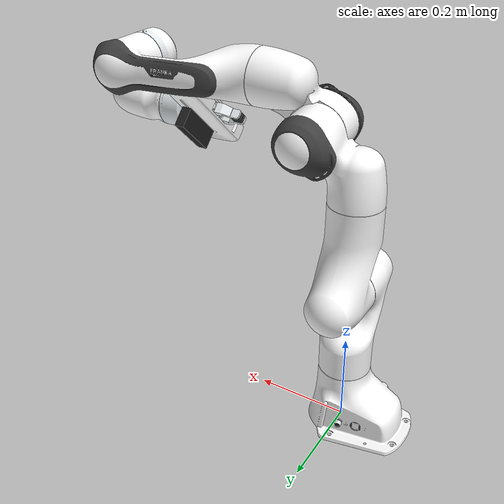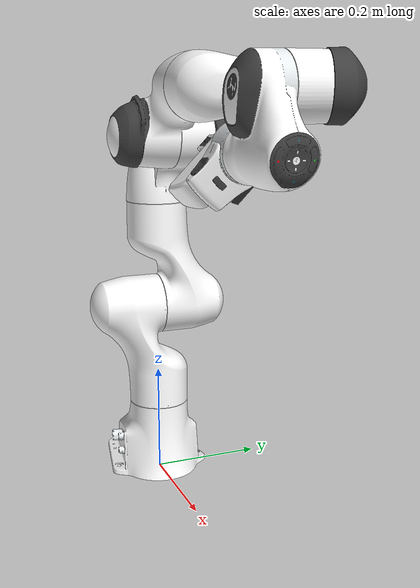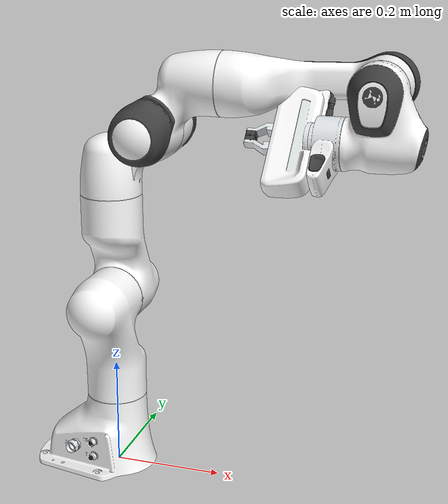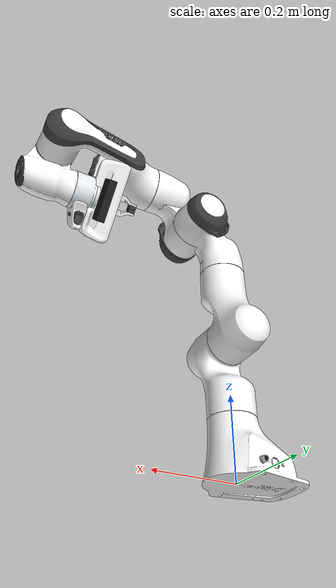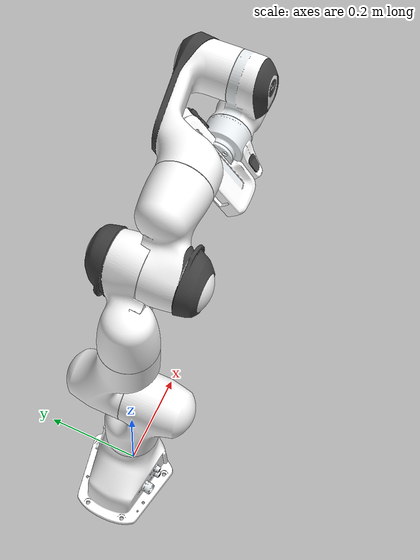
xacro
<?xml version="1.0" ?>
<!-- |    This document was autogenerated by xacro from robots/panda_arm_hand.urdf.xacro | -->
<!-- |    EDITING THIS FILE BY HAND IS NOT RECOMMENDED                                 | -->
<robot name="panda" xmlns:xacro="http://www.ros.org/wiki/xacro">
  <!-- If using a different frame with ${connected_to} param, make sure 'world' frame exists in the TF tree -->
  <xacro:arg name="arm_id" default="panda"/>
  <xacro:property name="M_PI" value="3.1415926535897931" />
  <joint name="panda_hand_joint" type="fixed">
    <parent link="panda_link8"/>
    <child link="panda_hand"/>
    <origin rpy="0 0 -0.7853981633974483" xyz="0 0 0"/>
  </joint>
  <link name="panda_hand">
    <visual>
      <geometry>
        <mesh filename="package://franka_panda_description/meshes/visual/hand.dae"/>
      </geometry>
    </visual>
    <collision>
      <geometry>
        <mesh filename="package://franka_panda_description/meshes/collision/hand.stl"/>
      </geometry>
    </collision>
    <inertial>
      <origin rpy="0 0 0" xyz="0 0.0015244 0.0275912"/>
      <mass value="0.73"/>
      <inertia ixx="0.00278560230025" ixy="0.0" ixz="0.0" iyy="0.000400033405336" iyz="0.0" izz="0.00256378041832"/>
    </inertial>
  </link>
  <link name="panda_leftfinger">
    <visual>
      <geometry>
        <mesh filename="package://franka_panda_description/meshes/visual/finger.dae"/>
      </geometry>
    </visual>
    <collision>
      <geometry>
        <mesh filename="package://franka_panda_description/meshes/collision/finger.stl"/>
      </geometry>
    </collision>
    <inertial>
      <origin rpy="0 0 0" xyz="0 0.0145644 0.0227941"/>
      <mass value="0.1"/>
      <inertia ixx="3.01220925051e-05" ixy="0.0" ixz="0.0" iyy="2.95873808038e-05" iyz="0.0" izz="6.95125211657e-06"/>
    </inertial>
  </link>
  <link name="panda_rightfinger">
    <visual>
      <origin rpy="0 0 3.141592653589793" xyz="0 0 0"/>
      <geometry>
        <mesh filename="package://franka_panda_description/meshes/visual/finger.dae"/>
      </geometry>
    </visual>
    <collision>
      <origin rpy="0 0 3.141592653589793" xyz="0 0 0"/>
      <geometry>
        <mesh filename="package://franka_panda_description/meshes/collision/finger.stl"/>
      </geometry>
    </collision>
    <inertial>
      <origin rpy="0 0 3.141592653589793" xyz="0 -0.0145644 0.0227941"/>
      <mass value="0.1"/>
      <inertia ixx="3.01220925051e-05" ixy="0.0" ixz="0.0" iyy="2.95873808038e-05" iyz="0.0" izz="6.95125211657e-06"/>
    </inertial>
  </link>
  <joint name="panda_finger_joint1" type="prismatic">
    <parent link="panda_hand"/>
    <child link="panda_leftfinger"/>
    <origin rpy="0 0 0" xyz="0 0 0.0584"/>
    <axis xyz="0 1 0"/>
    <limit effort="20" lower="0.0" upper="0.04" velocity="0.2"/>
    <dynamics damping="500.0" friction="0.0"/>
  </joint>
  <joint name="panda_finger_joint2" type="prismatic">
    <parent link="panda_hand"/>
    <child link="panda_rightfinger"/>
    <origin rpy="0 0 0" xyz="0 0 0.0584"/>
    <axis xyz="0 -1 0"/>
    <limit effort="20" lower="0.0" upper="0.04" velocity="0.2"/>
    <dynamics damping="500.0" friction="0.0"/>
    <mimic joint="panda_finger_joint1"/>
  </joint>
  <link name="world"/>
  <joint name="panda_to_world" type="fixed">
    <parent link="world"/>
    <child link="panda_link0"/>
    <origin rpy="0 0 0" xyz="0 0 0"/>
    <dynamics damping="1.0"/>
  </joint>
  <link name="panda_link0">
    <visual>
      <geometry>
        <mesh filename="package://franka_panda_description/meshes/visual/link0.dae"/>
      </geometry>
    </visual>
    <collision>
      <geometry>
        <mesh filename="package://franka_panda_description/meshes/collision/link0.stl"/>
      </geometry>
    </collision>
    <inertial>
      <origin rpy="0 0 0" xyz="0 0 0"/>
      <mass value="3.06"/>
      <inertia ixx="0.3" ixy="0.0" ixz="0.0" iyy="0.3" iyz="0.0" izz="0.3"/>
    </inertial>
  </link>
  <link name="panda_link1">
    <visual>
      <geometry>
        <mesh filename="package://franka_panda_description/meshes/visual/link1.dae"/>
      </geometry>
    </visual>
    <collision>
      <geometry>
        <mesh filename="package://franka_panda_description/meshes/collision/link1.stl"/>
      </geometry>
    </collision>
    <inertial>
      <origin rpy="0 0 0" xyz="3.875e-03 2.081e-03 -0.1750"/>
      <mass value="4.970684"/>
      <inertia ixx="7.0337e-01" ixy="-1.3900e-04" ixz="6.7720e-03" iyy="7.0661e-01" iyz="1.9169e-02" izz="9.1170e-03"/>
    </inertial>
  </link>
  <joint name="panda_joint1" type="revolute">
    <safety_controller k_position="100.0" k_velocity="40.0" soft_lower_limit="-2.8973" soft_upper_limit="2.8973"/>
    <origin rpy="0 0 0" xyz="0 0 0.333"/>
    <parent link="panda_link0"/>
    <child link="panda_link1"/>
    <axis xyz="0 0 1"/>
    <limit effort="87" lower="-2.8973" upper="2.8973" velocity="2.1750"/>
    <dynamics damping="10.0" friction="5.0"/>
  </joint>
  <link name="panda_link2">
    <visual>
      <geometry>
        <mesh filename="package://franka_panda_description/meshes/visual/link2.dae"/>
      </geometry>
    </visual>
    <collision>
      <geometry>
        <mesh filename="package://franka_panda_description/meshes/collision/link2.stl"/>
      </geometry>
    </collision>
    <inertial>
      <origin rpy="0 0 0" xyz="-3.141e-03 -2.872e-02 3.495e-03"/>
      <mass value="0.646926"/>
      <inertia ixx="7.9620e-03" ixy="-3.9250e-03" ixz="1.0254e-02" iyy="2.8110e-02" iyz="7.0400e-04" izz="2.5995e-02"/>
    </inertial>
  </link>
  <joint name="panda_joint2" type="revolute">
    <safety_controller k_position="100.0" k_velocity="40.0" soft_lower_limit="-1.7628" soft_upper_limit="1.7628"/>
    <origin rpy="-1.5707963267948966 0 0" xyz="0 0 0"/>
    <parent link="panda_link1"/>
    <child link="panda_link2"/>
    <axis xyz="0 0 1"/>
    <limit effort="87" lower="-1.7628" upper="1.7628" velocity="2.1750"/>
    <dynamics damping="5.0" friction="2.0"/>
  </joint>
  <link name="panda_link3">
    <visual>
      <geometry>
        <mesh filename="package://franka_panda_description/meshes/visual/link3.dae"/>
      </geometry>
    </visual>
    <collision>
      <geometry>
        <mesh filename="package://franka_panda_description/meshes/collision/link3.stl"/>
      </geometry>
    </collision>
    <inertial>
      <origin rpy="0 0 0" xyz="2.7518e-02 3.9252e-02 -6.6502e-02"/>
      <mass value="3.228604"/>
      <inertia ixx="3.7242e-02" ixy="-4.7610e-03" ixz="-1.1396e-02" iyy="3.6155e-02" iyz="-1.2805e-02" izz="1.0830e-02"/>
    </inertial>
  </link>
  <joint name="panda_joint3" type="revolute">
    <safety_controller k_position="100.0" k_velocity="40.0" soft_lower_limit="-2.8973" soft_upper_limit="2.8973"/>
    <origin rpy="1.5707963267948966 0 0" xyz="0 -0.316 0"/>
    <parent link="panda_link2"/>
    <child link="panda_link3"/>
    <axis xyz="0 0 1"/>
    <limit effort="87" lower="-2.8973" upper="2.8973" velocity="2.1750"/>
    <dynamics damping="5.0" friction="2.0"/>
  </joint>
  <link name="panda_link4">
    <visual>
      <geometry>
        <mesh filename="package://franka_panda_description/meshes/visual/link4.dae"/>
      </geometry>
    </visual>
    <collision>
      <geometry>
        <mesh filename="package://franka_panda_description/meshes/collision/link4.stl"/>
      </geometry>
    </collision>
    <inertial>
      <origin rpy="0 0 0" xyz="-5.317e-02 1.04419e-01 2.7454e-02"/>
      <mass value="3.587895"/>
      <inertia ixx="2.5853e-02" ixy="7.7960e-03" ixz="-1.3320e-03" iyy="1.9552e-02" iyz="8.6410e-03" izz="2.8323e-02"/>
    </inertial>
  </link>
  <joint name="panda_joint4" type="revolute">
    <safety_controller k_position="100.0" k_velocity="40.0" soft_lower_limit="-3.0718" soft_upper_limit="-0.0698"/>
    <origin rpy="1.5707963267948966 0 0" xyz="0.0825 0 0"/>
    <parent link="panda_link3"/>
    <child link="panda_link4"/>
    <axis xyz="0 0 1"/>
    <limit effort="87" lower="-3.0718" upper="-0.0698" velocity="2.1750"/>
    <dynamics damping="1.0" friction="0.5"/>
  </joint>
  <link name="panda_link5">
    <visual>
      <geometry>
        <mesh filename="package://franka_panda_description/meshes/visual/link5.dae"/>
      </geometry>
    </visual>
    <collision>
      <geometry>
        <mesh filename="package://franka_panda_description/meshes/collision/link5.stl"/>
      </geometry>
    </collision>
    <inertial>
      <origin rpy="0 0 0" xyz="-1.1953e-02 4.1065e-02 -3.8437e-02"/>
      <mass value="1.225946"/>
      <inertia ixx="3.5549e-02" ixy="-2.1170e-03" ixz="-4.0370e-03" iyy="2.9474e-02" iyz="2.2900e-04" izz="8.6270e-03"/>
    </inertial>
  </link>
  <joint name="panda_joint5" type="revolute">
    <safety_controller k_position="100.0" k_velocity="40.0" soft_lower_limit="-2.8973" soft_upper_limit="2.8973"/>
    <origin rpy="-1.5707963267948966 0 0" xyz="-0.0825 0.384 0"/>
    <parent link="panda_link4"/>
    <child link="panda_link5"/>
    <axis xyz="0 0 1"/>
    <limit effort="12" lower="-2.8973" upper="2.8973" velocity="2.6100"/>
    <dynamics damping="2.0" friction="1.0"/>
  </joint>
  <link name="panda_link6">
    <visual>
      <geometry>
        <mesh filename="package://franka_panda_description/meshes/visual/link6.dae"/>
      </geometry>
    </visual>
    <collision>
      <geometry>
        <mesh filename="package://franka_panda_description/meshes/collision/link6.stl"/>
      </geometry>
    </collision>
    <inertial>
      <origin rpy="0 0 0" xyz="6.0149e-02 -1.4117e-02 -1.0517e-02"/>
      <mass value="1.666555"/>
      <inertia ixx="1.9640e-03" ixy="1.0900e-04" ixz="-1.1580e-03" iyy="4.3540e-03" iyz="3.4100e-04" izz="5.4330e-03"/>
    </inertial>
  </link>
  <joint name="panda_joint6" type="revolute">
    <safety_controller k_position="100.0" k_velocity="40.0" soft_lower_limit="-0.0175" soft_upper_limit="3.7525"/>
    <origin rpy="1.5707963267948966 0 0" xyz="0 0 0"/>
    <parent link="panda_link5"/>
    <child link="panda_link6"/>
    <axis xyz="0 0 1"/>
    <limit effort="12" lower="-0.0175" upper="3.7525" velocity="2.6100"/>
    <dynamics damping="1.0" friction="0.5"/>
  </joint>
  <link name="panda_link7">
    <visual>
      <geometry>
        <mesh filename="package://franka_panda_description/meshes/visual/link7.dae"/>
      </geometry>
    </visual>
    <collision>
      <geometry>
        <mesh filename="package://franka_panda_description/meshes/collision/link7.stl"/>
      </geometry>
    </collision>
    <inertial>
      <origin rpy="0 0 0" xyz="1.0517e-02 -4.252e-03 6.1597e-02"/>
      <mass value="7.35522e-01"/>
      <inertia ixx="1.2516e-02" ixy="-4.2800e-04" ixz="-1.1960e-03" iyy="1.0027e-02" iyz="-7.4100e-04" izz="4.8150e-03"/>
    </inertial>
  </link>
  <joint name="panda_joint7" type="revolute">
    <safety_controller k_position="100.0" k_velocity="40.0" soft_lower_limit="-2.8973" soft_upper_limit="2.8973"/>
    <origin rpy="1.5707963267948966 0 0" xyz="0.088 0 0"/>
    <parent link="panda_link6"/>
    <child link="panda_link7"/>
    <axis xyz="0 0 1"/>
    <limit effort="12" lower="-2.8973" upper="2.8973" velocity="2.6100"/>
    <dynamics damping="1.0" friction="0.5"/>
  </joint>

 <joint name="camera_joint" type="fixed">
      <parent link="panda_link7"/>
      <child link="camera_link"/>
      <origin rpy="0 ${-pi/2} ${-pi/4 + pi}" xyz="0.03 -0.03  0.1270"/>
  </joint>

  <link name="camera_link">
    <visual>
        <geometry>
            <box size="0.02 0.1 0.04" />
        </geometry>
    </visual>
    <collision>
      <geometry>
        <box size="0.02 0.1 0.04" />
      </geometry>
    </collision>
  </link>

  <joint name="camera_optical_joint" type="fixed">
      <parent link="camera_link"/>
      <child link="camera_link_optical"/>
      <origin xyz="0 0 0" rpy="0 0 0"/>
  </joint>

  <link name="camera_link_optical"></link>

  <gazebo reference="camera_link">
      <material>Gazebo/Black</material>

      <sensor name="camera" type="camera">
          <pose> 0 0 0 0 0 0 </pose>
          <update_rate>30</update_rate>
          <camera>
              <horizontal_fov>${78 * pi/180.0}</horizontal_fov>
              <image>
                  <format>R8G8B8</format>
                  <width>800</width>
                  <height>448</height>
              </image>
              <clip>
                  <near>0.1</near>
                  <far>8.0</far>
              </clip>
          </camera>
          <plugin name="camera_controller" filename="libgazebo_ros_camera.so">
              <frame_name>camera_link_optical</frame_name>
          </plugin>
      </sensor>
  </gazebo>

  <link name="panda_link8">
    <inertial>
      <origin rpy="0 0 0" xyz="0 0 0"/>
      <mass value="0.0"/>
      <inertia ixx="0.001" ixy="0.0" ixz="0.0" iyy="0.001" iyz="0.0" izz="0.001"/>
    </inertial>
  </link>
  <joint name="panda_joint8" type="fixed">
    <origin rpy="0 0 0" xyz="0 0 0.107"/>
    <parent link="panda_link7"/>
    <child link="panda_link8"/>
    <axis xyz="0 0 0"/>
  </joint>
  <gazebo reference="panda_joint7">
    <implicitSpringDamper>1</implicitSpringDamper>
    <provideFeedback>true</provideFeedback>
  </gazebo>
  <gazebo reference="panda_joint1">
    <implicitSpringDamper>1</implicitSpringDamper>
    <provideFeedback>true</provideFeedback>
  </gazebo>
  <gazebo reference="panda_joint2">
    <implicitSpringDamper>1</implicitSpringDamper>
    <provideFeedback>true</provideFeedback>
  </gazebo>
  <gazebo reference="panda_joint3">
    <implicitSpringDamper>1</implicitSpringDamper>
    <provideFeedback>true</provideFeedback>
  </gazebo>
  <gazebo reference="panda_joint4">
    <implicitSpringDamper>1</implicitSpringDamper>
    <provideFeedback>true</provideFeedback>
  </gazebo>
  <gazebo reference="panda_joint5">
    <implicitSpringDamper>1</implicitSpringDamper>
    <provideFeedback>true</provideFeedback>
  </gazebo>
  <gazebo reference="panda_joint6">
    <implicitSpringDamper>1</implicitSpringDamper>
    <provideFeedback>true</provideFeedback>
  </gazebo>
  <gazebo reference="panda_finger_joint1">
    <implicitSpringDamper>1</implicitSpringDamper>
    <provideFeedback>true</provideFeedback>
  </gazebo>
  <gazebo reference="panda_finger_joint2">
    <implicitSpringDamper>1</implicitSpringDamper>
    <provideFeedback>true</provideFeedback>
  </gazebo>
  <!-- Adding FT sensor at wrist. This is not present in real robot and is used only for computing end-point effort directly, unlike in the real robot where it is estimated from the joint efforts. -->
  <gazebo reference="panda_joint7">
    <disableFixedJointLumping>true</disableFixedJointLumping>
    <sensor name="panda_joint7_force_torque" type="force_torque">
      <always_on>true</always_on>
      <visualize>false</visualize>
      <force_torque>
        <frame>sensor</frame>
        <measure_direction>child_to_parent</measure_direction>
      </force_torque>
    </sensor>
  </gazebo>
  <gazebo>
    <plugin filename="libgazebo_ros_ft_sensor.so" name="ft_sensor">
      <updateRate>30.0</updateRate>
      <topicName>/gazebo/robot/wrist/ft</topicName>
      <jointName>panda_joint7</jointName>
    </plugin>
  </gazebo>
  <!-- Configure self collision properties per link -->
  <!-- The gripper fingers do not have this flag otherwise the gripper would not be allowed to close correctly -->
  <gazebo reference="panda_link1">
    <selfCollide>true</selfCollide>
  </gazebo>
  <gazebo reference="panda_link2">
    <selfCollide>true</selfCollide>
  </gazebo>
  <gazebo reference="panda_link3">
    <selfCollide>true</selfCollide>
  </gazebo>
  <gazebo reference="panda_link4">
    <selfCollide>true</selfCollide>
  </gazebo>
  <gazebo reference="panda_link5">
    <selfCollide>true</selfCollide>
  </gazebo>
  <gazebo reference="panda_link6">
    <selfCollide>true</selfCollide>
  </gazebo>
  <gazebo reference="panda_link7">
    <selfCollide>true</selfCollide>
  </gazebo>
  <!-- Collision sensors on all links. This is not present on the real robot, it is used only in simulation to detect collisions. -->
  <!-- Link 0 is omitted because it is always in contact with the ground  -->
  <gazebo reference="panda_link1">
    <sensor name="panda_link1_contact" type="contact">
      <update_rate> 50 </update_rate>
      <always_on>true</always_on>
      <contact>
        <collision>panda_link1_collision</collision>
      </contact>
      <plugin filename="libgazebo_ros_bumper.so" name="link1_bumper">
        <bumperTopicName>panda_link1_collision</bumperTopicName>
        <frameName>panda_link1</frameName>
      </plugin>
    </sensor>
  </gazebo>
  <gazebo reference="panda_link2">
    <sensor name="panda_link2_contact" type="contact">
      <update_rate> 50 </update_rate>
      <always_on>true</always_on>
      <contact>
        <collision>panda_link2_collision</collision>
      </contact>
      <plugin filename="libgazebo_ros_bumper.so" name="link2_bumper">
        <bumperTopicName>panda_link2_collision</bumperTopicName>
        <frameName>panda_link2</frameName>
      </plugin>
    </sensor>
  </gazebo>
  <gazebo reference="panda_link3">
    <sensor name="panda_link3_contact" type="contact">
      <update_rate> 50 </update_rate>
      <always_on>true</always_on>
      <contact>
        <collision>panda_link3_collision</collision>
      </contact>
      <plugin filename="libgazebo_ros_bumper.so" name="link3_bumper">
        <bumperTopicName>panda_link3_collision</bumperTopicName>
        <frameName>panda_link3</frameName>
      </plugin>
    </sensor>
  </gazebo>
  <gazebo reference="panda_link4">
    <sensor name="panda_link4_contact" type="contact">
      <update_rate> 50 </update_rate>
      <always_on>true</always_on>
      <contact>
        <collision>panda_link4_collision</collision>
      </contact>
      <plugin filename="libgazebo_ros_bumper.so" name="link4_bumper">
        <bumperTopicName>panda_link4_collision</bumperTopicName>
        <frameName>panda_link4</frameName>
      </plugin>
    </sensor>
  </gazebo>
  <gazebo reference="panda_link5">
    <sensor name="panda_link5_contact" type="contact">
      <update_rate> 50 </update_rate>
      <always_on>true</always_on>
      <contact>
        <collision>panda_link5_collision</collision>
      </contact>
      <plugin filename="libgazebo_ros_bumper.so" name="link5_bumper">
        <bumperTopicName>panda_link5_collision</bumperTopicName>
        <frameName>panda_link5</frameName>
      </plugin>
    </sensor>
  </gazebo>
  <gazebo reference="panda_link6">
    <sensor name="panda_link6_contact" type="contact">
      <update_rate> 50 </update_rate>
      <always_on>true</always_on>
      <contact>
        <collision>panda_link6_collision</collision>
      </contact>
      <plugin filename="libgazebo_ros_bumper.so" name="link6_bumper">
        <bumperTopicName>panda_link6_collision</bumperTopicName>
        <frameName>panda_link6</frameName>
      </plugin>
    </sensor>
  </gazebo>
  <gazebo reference="panda_link7">
    <sensor name="panda_link7_contact" type="contact">
      <update_rate> 50 </update_rate>
      <always_on>true</always_on>
      <contact>
        <collision>panda_link7_collision</collision>
      </contact>
      <plugin filename="libgazebo_ros_bumper.so" name="link7_bumper">
        <bumperTopicName>panda_link7_collision</bumperTopicName>
        <frameName>panda_link7</frameName>
      </plugin>
    </sensor>
  </gazebo>
  <gazebo reference="panda_leftfinger">
    <sensor name="panda_leftfinger_contact" type="contact">
      <update_rate> 50 </update_rate>
      <always_on>true</always_on>
      <contact>
        <collision>panda_leftfinger_collision</collision>
      </contact>
      <plugin filename="libgazebo_ros_bumper.so" name="leftfinger_bumper">
        <bumperTopicName>panda_leftfinger_collision</bumperTopicName>
        <frameName>panda_leftfinger</frameName>
      </plugin>
    </sensor>
  </gazebo>
  <gazebo reference="panda_rightfinger">
    <sensor name="panda_rightfinger_contact" type="contact">
      <update_rate> 50 </update_rate>
      <always_on>true</always_on>
      <contact>
        <collision>panda_rightfinger_collision</collision>
      </contact>
      <plugin filename="libgazebo_ros_bumper.so" name="rightfinger_bumper">
        <bumperTopicName>panda_rightfinger_collision</bumperTopicName>
        <frameName>panda_rightfinger</frameName>
      </plugin>
    </sensor>
  </gazebo>
  <gazebo>
    <plugin filename="libpanda_gazebo_ros_control.so" name="panda_ros_control">
      <robotNamespace>$(arg arm_id)</robotNamespace>
      <robotSimType>panda_gazebo/PandaRobotHWSim</robotSimType>
      <controlPeriod>0.001</controlPeriod>
      <eStopTopic>sim_estop</eStopTopic>
    </plugin>
  </gazebo>
  <transmission name="panda_tran_1">
    <type>transmission_interface/SimpleTransmission</type>
    <joint name="panda_joint1">
      <hardwareInterface>hardware_interface/EffortJointInterface</hardwareInterface>
    </joint>
    <actuator name="panda_motor_1">
      <hardwareInterface>hardware_interface/EffortJointInterface</hardwareInterface>
      <mechanicalReduction>1</mechanicalReduction>
    </actuator>
  </transmission>
  <transmission name="panda_tran_2">
    <type>transmission_interface/SimpleTransmission</type>
    <joint name="panda_joint2">
      <hardwareInterface>hardware_interface/EffortJointInterface</hardwareInterface>
    </joint>
    <actuator name="panda_motor_2">
      <hardwareInterface>hardware_interface/EffortJointInterface</hardwareInterface>
      <mechanicalReduction>1</mechanicalReduction>
    </actuator>
  </transmission>
  <transmission name="panda_tran_3">
    <type>transmission_interface/SimpleTransmission</type>
    <joint name="panda_joint3">
      <hardwareInterface>hardware_interface/EffortJointInterface</hardwareInterface>
    </joint>
    <actuator name="panda_motor_3">
      <hardwareInterface>hardware_interface/EffortJointInterface</hardwareInterface>
      <mechanicalReduction>1</mechanicalReduction>
    </actuator>
  </transmission>
  <transmission name="panda_tran_4">
    <type>transmission_interface/SimpleTransmission</type>
    <joint name="panda_joint4">
      <hardwareInterface>hardware_interface/EffortJointInterface</hardwareInterface>
    </joint>
    <actuator name="panda_motor_4">
      <hardwareInterface>hardware_interface/EffortJointInterface</hardwareInterface>
      <mechanicalReduction>1</mechanicalReduction>
    </actuator>
  </transmission>
  <transmission name="panda_tran_5">
    <type>transmission_interface/SimpleTransmission</type>
    <joint name="panda_joint5">
      <hardwareInterface>hardware_interface/EffortJointInterface</hardwareInterface>
    </joint>
    <actuator name="panda_motor_5">
      <hardwareInterface>hardware_interface/EffortJointInterface</hardwareInterface>
      <mechanicalReduction>1</mechanicalReduction>
    </actuator>
  </transmission>
  <transmission name="panda_tran_6">
    <type>transmission_interface/SimpleTransmission</type>
    <joint name="panda_joint6">
      <hardwareInterface>hardware_interface/EffortJointInterface</hardwareInterface>
    </joint>
    <actuator name="panda_motor_6">
      <hardwareInterface>hardware_interface/EffortJointInterface</hardwareInterface>
      <mechanicalReduction>1</mechanicalReduction>
    </actuator>
  </transmission>
  <transmission name="panda_tran_7">
    <type>transmission_interface/SimpleTransmission</type>
    <joint name="panda_joint7">
      <hardwareInterface>hardware_interface/EffortJointInterface</hardwareInterface>
    </joint>
    <actuator name="panda_motor_7">
      <hardwareInterface>hardware_interface/EffortJointInterface</hardwareInterface>
      <mechanicalReduction>1</mechanicalReduction>
    </actuator>
  </transmission>
  <transmission name="panda_leftfinger">
    <type>transmission_interface/SimpleTransmission</type>
    <joint name="panda_finger_joint1">
      <hardwareInterface>hardware_interface/EffortJointInterface</hardwareInterface>
    </joint>
    <actuator name="panda_finger_joint1">
      <hardwareInterface>hardware_interface/EffortJointInterface</hardwareInterface>
      <mechanicalReduction>1</mechanicalReduction>
    </actuator>
  </transmission>
  <transmission name="panda_rightfinger">
    <type>transmission_interface/SimpleTransmission</type>
    <joint name="panda_finger_joint2">
      <hardwareInterface>hardware_interface/EffortJointInterface</hardwareInterface>
    </joint>
    <actuator name="panda_finger_joint2">
      <hardwareInterface>hardware_interface/EffortJointInterface</hardwareInterface>
      <mechanicalReduction>1</mechanicalReduction>
    </actuator>
  </transmission>

  <gazebo reference="panda_link0">
      <turnGravityOff>true</turnGravityOff>
  </gazebo>
  <gazebo reference="panda_link1">
      <turnGravityOff>true</turnGravityOff>
  </gazebo>
  <gazebo reference="panda_link2">
      <turnGravityOff>true</turnGravityOff>
  </gazebo>
  <gazebo reference="panda_link3">
      <turnGravityOff>true</turnGravityOff>
  </gazebo>
  <gazebo reference="panda_link4">
      <turnGravityOff>true</turnGravityOff>
  </gazebo>
  <gazebo reference="panda_link5">
      <turnGravityOff>true</turnGravityOff>
  </gazebo>
  <gazebo reference="panda_link6">
      <turnGravityOff>true</turnGravityOff>
  </gazebo>
  <gazebo reference="panda_link7">
      <turnGravityOff>true</turnGravityOff>
  </gazebo>
  <gazebo reference="panda_link8">
      <turnGravityOff>true</turnGravityOff>
  </gazebo>
  <gazebo reference="panda_leftfinger">
      <turnGravityOff>true</turnGravityOff>
  </gazebo>
  <gazebo reference="panda_rightfinger">
      <turnGravityOff>true</turnGravityOff>
  </gazebo>

</robot>
